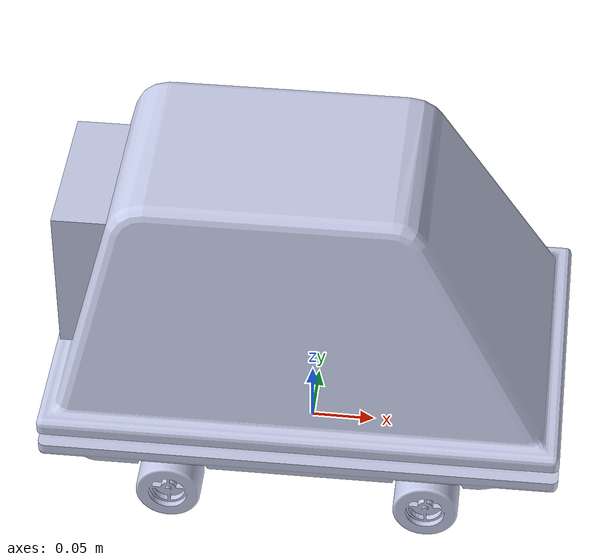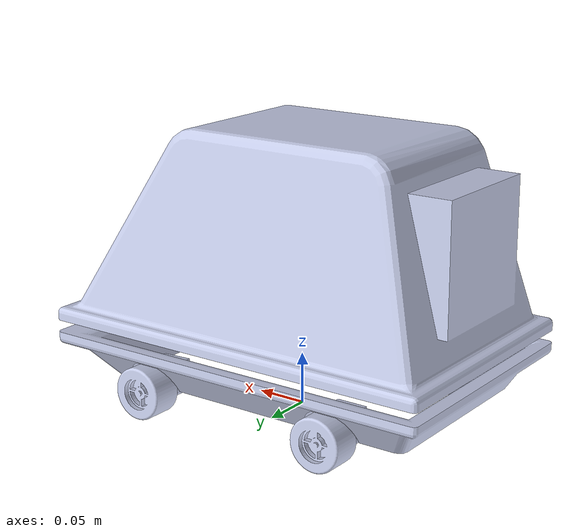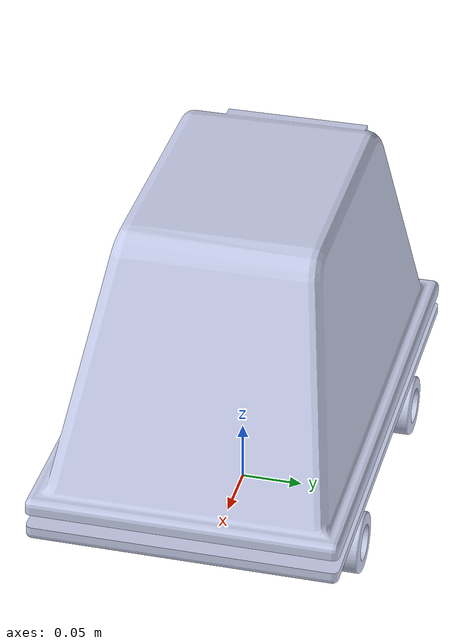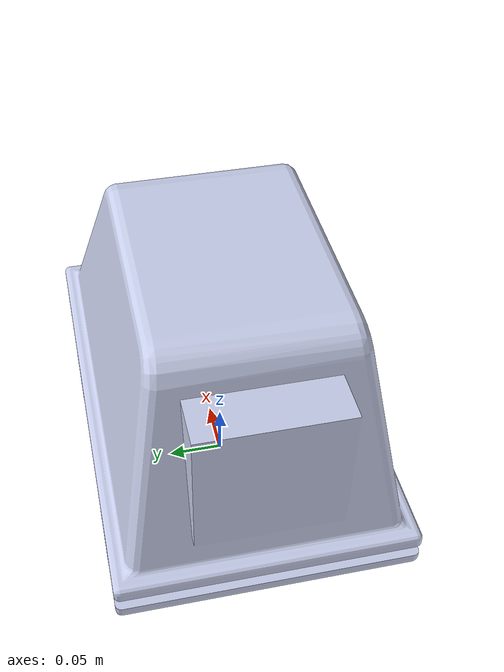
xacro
<?xml version="1.0" encoding="utf-8"?>
<robot xmlns:xacro="http://www.ros.org/wiki/xacro" name="mse6">

  <xacro:arg name="robot" default="mse6-XXXXX"/>

  <xacro:include filename="$(find mse6_description)/urdf/mse6.gazebo"/>

  <xacro:property name="wheel_r" value="0.025"/>
  <xacro:property name="wheel_h" value="0.030"/>

  <xacro:property name="steer_limit" value="0.5"/>

  <link name="$(arg robot)/base_link"/>

  <!-- SENSORS -->

  <link name="$(arg robot)/laser_scanner_link">

  </link>

  <joint name="$(arg robot)/laser_scanner_j"
         type="fixed">
      <parent link="$(arg robot)/base_link"/>
      <child link="$(arg robot)/laser_scanner_link"/>
      <origin
          xyz="0.1 0 0.07"
          rpy="0 0 0"/>
  </joint>

  <link name="$(arg robot)/holocamera_link"/>

  <joint name="$(arg robot)/holocamera_j"
         type="fixed">
      <parent link="$(arg robot)/base_link"/>
      <child link="$(arg robot)/holocamera_link"/>
      <origin
          xyz="0.19 0 0.07"
          rpy="0 0 0"/>
  </joint>

  <link name="$(arg robot)/holocamera_optical_link"/>

  <joint name="$(arg robot)/holocamera_optical_j"
         type="fixed">
      <parent link="$(arg robot)/holocamera_link"/>
      <child link="$(arg robot)/holocamera_optical_link"/>
      <origin
          xyz="0 0 0"
          rpy="${-pi/2} 0 ${-pi/2}"/>
  </joint>

  <!-- Rangefinders (sonar) -->
  <xacro:include filename="$(find mse6_description)/urdf/rangefinders.xacro"/>

  <!-- BODY -->

  <joint name="$(arg robot)/body_bott_link_j"
         type="fixed">
      <parent link="$(arg robot)/base_link"/>
      <child link="$(arg robot)/body_bott_link"/>
      <origin
          xyz = "0 0 0.055"
          rpy="0 0 ${pi}"/>
  </joint>

  <link
    name="$(arg robot)/body_bott_link">
    <inertial>
      <origin
        xyz="-0.0122155028263459 -4.96658397779976E-08 -0.00438944402790101"
        rpy="0 0 0" />
      <mass
        value="0.669776829617329" />
      <inertia
        ixx="0.00539268235460428"
        ixy="-1.35829186636467E-08"
        ixz="8.340914352775E-05"
        iyy="0.013420683457625"
        iyz="-3.04908606084847E-09"
        izz="0.0186360064602886" />
    </inertial>
    <visual>
      <origin
        xyz="0 0 0"
        rpy="0 0 0" />
      <geometry>
        <mesh
          filename="package://mse6_description/meshes/body_bott_link.STL" />
      </geometry>
      <material
        name="">
        <color
          rgba="0.792156862745098 0.819607843137255 0.933333333333333 1" />
      </material>
    </visual>
    <collision>
      <origin
        xyz="0 0 0"
        rpy="0 0 0" />
      <geometry>
        <mesh
          filename="package://mse6_description/meshes/body_bott_link.STL" />
      </geometry>
    </collision>
  </link>

  <link
    name="$(arg robot)/body_upper_link">
    <inertial>
      <origin
        xyz="0.0106523635822384 0.0957583223773372 7.70065903718291E-07"
        rpy="0 0 0" />
      <mass
        value="3.31897594877579" />
      <inertia
        ixx="0.0322670587324957"
        ixy="-0.00197272153001404"
        ixz="4.43741515523342E-08"
        iyy="0.0616233997912911"
        iyz="1.63446488019635E-07"
        izz="0.0545208392676588" />
    </inertial>
    <visual>
      <origin
        xyz="0 0 0"
        rpy="0 0 0" />
      <geometry>
        <mesh
          filename="package://mse6_description/meshes/body_upper_link.STL" />
      </geometry>
      <material
        name="">
        <color
          rgba="0.792156862745098 0.819607843137255 0.933333333333333 1" />
      </material>
    </visual>
    <collision>
      <origin
        xyz="0 0 0"
        rpy="0 0 0" />
      <geometry>
        <mesh
          filename="package://mse6_description/meshes/body_upper_link.STL" />
      </geometry>
    </collision>
  </link>

  <joint
    name="$(arg robot)/body_bottom_j"
    type="fixed">
    <origin
      xyz="0 0 0.024"
      rpy="1.5707963267949 0 0" />
    <parent
      link="$(arg robot)/body_bott_link" />
    <child
      link="$(arg robot)/body_upper_link" />
    <axis
      xyz="0 0 0" />
  </joint>

  <!-- FAKE FORWARD WHEEL -->

  <link name="$(arg robot)/fake_fwd_wheel_link"/>

  <joint name="$(arg robot)/fake_fwd_wheel_j" type="revolute">
      <parent link="$(arg robot)/body_upper_link"/>
      <child link="$(arg robot)/fake_fwd_wheel_link"/>
      <origin
          xyz="-0.1 -0.054 0"
          rpy="${pi/2} 0 ${pi}"
          />
      <axis xyz="0 1 0"/>

      <limit
        lower="${-steer_limit}"
        upper="${steer_limit}"
        effort="0.5"
        velocity="0.5" />

    </joint>

  <!-- FORWARD LEFT WHEEL -->

  <link
    name="$(arg robot)/fwd_left_wheel_holder_link">
    <inertial>
      <origin
        xyz="0 0.00371724710345012 0.0124491235899492"
        rpy="0 0 0" />
      <mass
        value="0.0211931028009629" />
      <inertia
        ixx="3.53229576994219E-06"
        ixy="-3.11019910319938E-22"
        ixz="2.36573655190166E-22"
        iyy="3.30604049675199E-06"
        iyz="1.92941956416194E-07"
        izz="3.06173646956124E-06" />
    </inertial>
    <visual>
      <origin
        xyz="0 0 0"
        rpy="0 0 0" />
      <geometry>
        <mesh
          filename="package://mse6_description/meshes/fwd_left_wheel_holder_link.STL" />
      </geometry>
      <material
        name="">

        <color
          rgba="0.792156862745098 0.819607843137255 0.933333333333333 1" />
      </material>
    </visual>
    <collision>
      <origin
        xyz="0 0 0"
        rpy="0 0 0" />
      <geometry>
        <mesh
          filename="package://mse6_description/meshes/fwd_left_wheel_holder_link.STL" />
      </geometry>
    </collision>
  </link>

  <joint
    name="$(arg robot)/fwd_left_wheel_holder_j"
    type="revolute">
    <origin
      xyz="-0.1 -0.054 0.065"
      rpy="0 0 0.035451" />
    <parent
      link="$(arg robot)/body_upper_link" />
    <child
      link="$(arg robot)/fwd_left_wheel_holder_link" />
    <axis
      xyz="0 1 0" />
    <limit
      lower="${-steer_limit}"
      upper="${steer_limit}"
      effort="0.5"
      velocity="0.5" />
    <dynamics
      damping="0.01"
      friction="0.05" />
  </joint>

  <link
    name="$(arg robot)/fwd_left_wheel_link">
    <inertial>
      <origin
        xyz="7.49757243442839E-09 0.0140446440204255 -1.20170077361204E-08"
        rpy="0 0 0" />
      <mass
        value="0.051765802678868" />
      <inertia
        ixx="1.23841652921864E-05"
        ixy="-4.39731323252349E-12"
        ixz="-1.01190667024014E-11"
        iyy="1.76432330584378E-05"
        iyz="8.24926177913857E-12"
        izz="1.23842195690004E-05" />
    </inertial>
    <visual>
      <origin
        xyz="0 0 0"
        rpy="0 0 0" />
      <geometry>
        <mesh
          filename="package://mse6_description/meshes/fwd_left_wheel_link.STL" />
      </geometry>
      <material
        name="">
        <color
          rgba="0.792156862745098 0.819607843137255 0.933333333333333 1" />
      </material>
    </visual>
    <collision>
      <origin
        xyz="0 ${wheel_h/2} 0"
        rpy="${pi/2} 0 0" />
      <geometry>
          <cylinder length="${wheel_h}" radius="${wheel_r}"/>
      </geometry>
    </collision>
  </link>

  <joint
    name="$(arg robot)/fwd_left_wheel_j"
    type="continuous">
    <origin
      xyz="0 0 0.03"
      rpy="1.5708 0 1.5353" />
    <parent
      link="$(arg robot)/fwd_left_wheel_holder_link" />
    <child
      link="$(arg robot)/fwd_left_wheel_link" />
    <axis
      xyz="0 -1 0" />
    <dynamics
      damping="0.05"
      friction="0.01" />
  </joint>

  <transmission name="$(arg robot)/tran_fwd_left_steer">
    <type>transmission_interface/SimpleTransmission</type>
    <joint name="$(arg robot)/fwd_left_wheel_holder_j">
        <hardwareInterface>VelocityJointInterface</hardwareInterface>
    </joint>
    <actuator name="$(arg robot)/fwd_left_steer">
        <hardwareInterface>VelocityJointInterface</hardwareInterface>
        <mechanicalReduction>1</mechanicalReduction>
    </actuator>
  </transmission>

  <!-- FORWARD RIGHT WHEEL -->

  <link
    name="$(arg robot)/fwd_right_wheel_holder_link">
    <inertial>
      <origin
        xyz="1.38777878078145E-17 0.00371724710345012 0.00244912358994914"
        rpy="0 0 0" />
      <mass
        value="0.0211931028009629" />
      <inertia
        ixx="3.53229576994218E-06"
        ixy="-1.0977341764353E-22"
        ixz="-1.87522225797809E-22"
        iyy="3.30604049675198E-06"
        iyz="1.92941956416194E-07"
        izz="3.06173646956124E-06" />
    </inertial>
    <visual>
      <origin
        xyz="0 0 0"
        rpy="0 0 0" />
      <geometry>
        <mesh
          filename="package://mse6_description/meshes/fwd_right_wheel_holder_link.STL" />
      </geometry>
      <material
        name="">
        <color
          rgba="0.792156862745098 0.819607843137255 0.933333333333333 1" />
      </material>
    </visual>
    <collision>
      <origin
        xyz="0 0 0"
        rpy="0 0 0" />
      <geometry>
        <mesh
          filename="package://mse6_description/meshes/fwd_right_wheel_holder_link.STL" />
      </geometry>
    </collision>
  </link>

  <joint
    name="$(arg robot)/fwd_right_wheel_holder_j"
    type="revolute">
    <origin
      xyz="-0.1 -0.054 -0.075"
      rpy="3.1416 0 3.1416" />
    <parent
      link="$(arg robot)/body_upper_link" />
    <child
      link="$(arg robot)/fwd_right_wheel_holder_link" />
    <axis
      xyz="0 1 0" />
    <limit
      lower="-0.5"
      upper="0.5"
      effort="0.5"
      velocity="0.5" />
    <dynamics
      damping="0.01"
      friction="0.05" />
  </joint>

  <link
    name="$(arg robot)/fwd_right_wheel_link">
    <inertial>
      <origin
        xyz="7.49757245177562E-09 0.0140446440204255 -1.20170077083648E-08"
        rpy="0 0 0" />
      <mass
        value="0.051765802678868" />
      <inertia
        ixx="1.23841652921864E-05"
        ixy="-4.39731322971975E-12"
        ixz="-1.01190667028144E-11"
        iyy="1.76432330584378E-05"
        iyz="8.2492617790428E-12"
        izz="1.23842195690004E-05" />
    </inertial>
    <visual>
      <origin
        xyz="0 0 0"
        rpy="0 0 0" />
      <geometry>
        <mesh
          filename="package://mse6_description/meshes/fwd_right_wheel_link.STL" />
      </geometry>
      <material
        name="">
        <color
          rgba="0.792156862745098 0.819607843137255 0.933333333333333 1" />
      </material>
    </visual>
    <collision>
      <origin
        xyz="0 ${wheel_h/2} 0"
        rpy="${pi/2} 0 0" />
      <geometry>
          <cylinder length="${wheel_h}" radius="${wheel_r}"/>
      </geometry>
    </collision>
  </link>

  <joint
    name="$(arg robot)/fwd_right_wheel_j"
    type="continuous">
    <origin
      xyz="0 0 0.02"
      rpy="1.5708 0 3.1416" />
    <parent
      link="$(arg robot)/fwd_right_wheel_holder_link" />
    <child
      link="$(arg robot)/fwd_right_wheel_link" />
    <axis
      xyz="0 1 0" />
    <dynamics
      damping="0.05"
      friction="0.01" />
  </joint>

  <transmission name="$(arg robot)/tran_fwd_right_steer">
    <type>transmission_interface/SimpleTransmission</type>
    <joint name="$(arg robot)/fwd_right_wheel_holder_j">
        <hardwareInterface>VelocityJointInterface</hardwareInterface>
    </joint>
    <actuator name="$(arg robot)/fwd_right_steer">
        <hardwareInterface>VelocityJointInterface</hardwareInterface>
        <mechanicalReduction>1</mechanicalReduction>
    </actuator>
  </transmission>

  <!-- FAKE BACK LINK -->

  <link name="$(arg robot)/fake_back_wheel_link"/>

  <joint name="$(arg robot)/fake_back_wheel_j" type="continuous">
         <origin
             xyz="0.1 -0.054 0.0"
             rpy="${pi/2} 0 ${pi}"/>
         <parent link="$(arg robot)/body_upper_link"/>
         <child link="$(arg robot)/fake_back_wheel_link"/>
         <axis xyz="0 1 0"/>
     </joint>

  <!-- BACK LEFT WHEEL -->

  <link
    name="$(arg robot)/back_left_wheel_holder_link">
    <inertial>
      <origin
        xyz="-1.38777878078145E-17 0.00371724710345012 0.00244912358994914"
        rpy="0 0 0" />
      <mass
        value="0.0211931028009629" />
      <inertia
        ixx="3.53229576994218E-06"
        ixy="-1.3305004692995E-22"
        ixz="2.88569550200515E-22"
        iyy="3.30604049675198E-06"
        iyz="1.92941956416194E-07"
        izz="3.06173646956124E-06" />
    </inertial>
    <visual>
      <origin
        xyz="0 0 0"
        rpy="0 0 0" />
      <geometry>
        <mesh
          filename="package://mse6_description/meshes/back_left_wheel_holder_link.STL" />
      </geometry>
      <material
        name="">
        <color
          rgba="0.792156862745098 0.819607843137255 0.933333333333333 1" />
      </material>
    </visual>
    <collision>
      <origin
        xyz="0 0 0"
        rpy="0 0 0" />
      <geometry>
        <mesh
          filename="package://mse6_description/meshes/back_left_wheel_holder_link.STL" />
      </geometry>
    </collision>
  </link>

  <joint
    name="$(arg robot)/back_left_wheel_holder_j"
    type="fixed">
    <origin
      xyz="0.1 -0.054 0.075"
      rpy="0 0 0" />
    <parent
      link="$(arg robot)/body_upper_link" />
    <child
      link="$(arg robot)/back_left_wheel_holder_link" />
    <axis
      xyz="0 0 0" />
  </joint>

  <link
    name="$(arg robot)/back_left_wheel_link">
    <inertial>
      <origin
        xyz="7.49757243789784E-09 0.0140446440204255 -1.20170077153037E-08"
        rpy="0 0 0" />
      <mass
        value="0.051765802678868" />
      <inertia
        ixx="1.23841652921864E-05"
        ixy="-4.39731323173739E-12"
        ixz="-1.01190667019079E-11"
        iyy="1.76432330584378E-05"
        iyz="8.24926178262453E-12"
        izz="1.23842195690005E-05" />
    </inertial>
    <visual>
      <origin
        xyz="0 0 0"
        rpy="0 0 0" />
      <geometry>
        <mesh
          filename="package://mse6_description/meshes/back_left_wheel_link.STL" />
      </geometry>
      <material
        name="">
        <color
          rgba="0.792156862745098 0.819607843137255 0.933333333333333 1" />
      </material>
    </visual>
    <collision>
      <origin
        xyz="0 ${wheel_h/2} 0"
        rpy="${pi/2} 0 0" />
      <geometry>
          <cylinder length="${wheel_h}" radius="${wheel_r}"/>
      </geometry>
    </collision>
  </link>

  <joint
    name="$(arg robot)/back_left_wheel_j"
    type="continuous">
    <origin
      xyz="0 0 0.02"
      rpy="1.5708 0 0" />
    <parent
      link="$(arg robot)/back_left_wheel_holder_link" />
    <child
      link="$(arg robot)/back_left_wheel_link" />
    <axis
      xyz="0 1 0" />
    <dynamics
      damping="0.01"
      friction="0.05" />
  </joint>

  <transmission name="$(arg robot)/tran_back_left">
    <type>transmission_interface/SimpleTransmission</type>
    <joint name="$(arg robot)/back_left_wheel_j">
        <hardwareInterface>VelocityJointInterface</hardwareInterface>
    </joint>
    <actuator name="$(arg robot)/back_left">
        <hardwareInterface>VelocityJointInterface</hardwareInterface>
        <mechanicalReduction>1</mechanicalReduction>
    </actuator>
  </transmission>

  <transmission name="$(arg robot)/tran1">
      <type>transmission_interface/SimpleTransmission</type>
        <joint name="$(arg robot)/back_left_wheel_j">
          <hardwareInterface>EffortJointInterface</hardwareInterface>
        </joint>
        <actuator name="$(arg robot)/motor1">
          <hardwareInterface>EffortJointInterface</hardwareInterface>
          <mechanicalReduction>1</mechanicalReduction>
        </actuator>
    </transmission>

  <!-- BACK RIGHT WHEEL -->

  <link
    name="$(arg robot)/back_right_wheel_holder_link">
    <inertial>
      <origin
        xyz="-1.38777878078145E-17 0.00371724710345012 0.00244912358994917"
        rpy="0 0 0" />
      <mass
        value="0.0211931028009629" />
      <inertia
        ixx="3.53229576994219E-06"
        ixy="2.11005131993304E-22"
        ixz="-3.28467007444202E-23"
        iyy="3.30604049675199E-06"
        iyz="1.92941956416194E-07"
        izz="3.06173646956124E-06" />
    </inertial>
    <visual>
      <origin
        xyz="0 0 0"
        rpy="0 0 0" />
      <geometry>
        <mesh
          filename="package://mse6_description/meshes/back_right_wheel_holder_link.STL" />
      </geometry>
      <material
        name="">
        <color
          rgba="0.792156862745098 0.819607843137255 0.933333333333333 1" />
      </material>
    </visual>
    <collision>
      <origin
        xyz="0 0 0"
        rpy="0 0 0" />
      <geometry>
        <mesh
          filename="package://mse6_description/meshes/back_right_wheel_holder_link.STL" />
      </geometry>
    </collision>
  </link>

  <joint
    name="$(arg robot)/back_right_wheel_holder_j"
    type="fixed">
    <origin
      xyz="0.1 -0.054 -0.075"
      rpy="3.1416 0 3.1416" />
    <parent
      link="$(arg robot)/body_upper_link" />
    <child
      link="$(arg robot)/back_right_wheel_holder_link" />
    <axis
      xyz="0 0 0" />
  </joint>

  <link
    name="$(arg robot)/back_right_wheel_link">
    <inertial>
      <origin
        xyz="7.49757243789784E-09 0.0140446440204255 -1.20170077222426E-08"
        rpy="0 0 0" />
      <mass
        value="0.051765802678868" />
      <inertia
        ixx="1.23841652921864E-05"
        ixy="-4.39731323051131E-12"
        ixz="-1.01190667027069E-11"
        iyy="1.76432330584378E-05"
        iyz="8.24926178070993E-12"
        izz="1.23842195690004E-05" />
    </inertial>
    <visual>
      <origin
        xyz="0 0 0"
        rpy="0 0 0" />
      <geometry>
        <mesh
          filename="package://mse6_description/meshes/back_right_wheel_link.STL" />
      </geometry>
      <material
        name="">
        <color
          rgba="0.792156862745098 0.819607843137255 0.933333333333333 1" />
      </material>
    </visual>
    <collision>
      <origin
        xyz="0 ${wheel_h/2} 0"
        rpy="${pi/2} 0 0" />
      <geometry>
          <cylinder length="${wheel_h}" radius="${wheel_r}"/>
      </geometry>
    </collision>
  </link>

  <joint
    name="$(arg robot)/back_right_wheel_j"
    type="continuous">
    <origin
      xyz="0 0 0.02"
      rpy="1.5708 0 1.5708" />
    <parent
      link="$(arg robot)/back_right_wheel_holder_link" />
    <child
      link="$(arg robot)/back_right_wheel_link" />
    <axis
      xyz="0 -1 0" />
    <dynamics
      damping="0.01"
      friction="0.05" />
  </joint>

  <transmission name="$(arg robot)/tran_back_right">
    <type>transmission_interface/SimpleTransmission</type>
    <joint name="$(arg robot)/back_right_wheel_j">
        <hardwareInterface>VelocityJointInterface</hardwareInterface>
    </joint>
    <actuator name="$(arg robot)/back_right">
        <hardwareInterface>VelocityJointInterface</hardwareInterface>
        <mechanicalReduction>1</mechanicalReduction>
    </actuator>
  </transmission>

  <transmission name="$(arg robot)/tran2">
      <type>transmission_interface/SimpleTransmission</type>
        <joint name="$(arg robot)/back_right_wheel_j">
          <hardwareInterface>EffortJointInterface</hardwareInterface>
        </joint>
        <actuator name="$(arg robot)/motor2">
          <hardwareInterface>EffortJointInterface</hardwareInterface>
          <mechanicalReduction>1</mechanicalReduction>
        </actuator>
    </transmission>

</robot>

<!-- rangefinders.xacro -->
<robot xmlns:xacro="http://www.ros.org/wiki/xacro">
  <xacro:macro name="sonar" params="name x y z wr wp wy">
    <link name="$(arg robot)/sonar_${name}_link"/>

    <joint name="$(arg robot)/sonar_${name}_j"
           type="fixed">
        <parent link="$(arg robot)/base_link"/>
        <child link="$(arg robot)/sonar_${name}_link"/>
        <origin
            xyz="${x} ${y} ${z}"
            rpy="${wr} ${wp} ${wy}"/>
    </joint>

    <gazebo reference="$(arg robot)/sonar_${name}_link">
      <material>Gazebo/Black</material>
    </gazebo>
  </xacro:macro>

  <xacro:sonar name="fl" x="0.15" y="0.045" z="0.07" wr="0" wp="0" wy="0" />
  <xacro:sonar name="fr" x="0.15" y="-0.045" z="0.07" wr="0" wp="0" wy="0" />
  <xacro:sonar name="rf" x="0.1" y="-0.075" z="0.07" wr="0" wp="0" wy="-${pi/2}" />
  <xacro:sonar name="rb" x="-0.1" y="-0.075" z="0.07" wr="0" wp="0" wy="-${pi/2}" />
  <xacro:sonar name="bl" x="-0.15" y="0.045" z="0.07" wr="0" wp="0" wy="${pi}" />
  <xacro:sonar name="br" x="-0.15" y="-0.045" z="0.07" wr="0" wp="0" wy="${pi}" />
  <xacro:sonar name="lf" x="0.1" y="0.075" z="0.07" wr="0" wp="0" wy="${pi/2}" />
  <xacro:sonar name="lb" x="-0.1" y="0.075" z="0.07" wr="0" wp="0" wy="${pi/2}" />
</robot>
